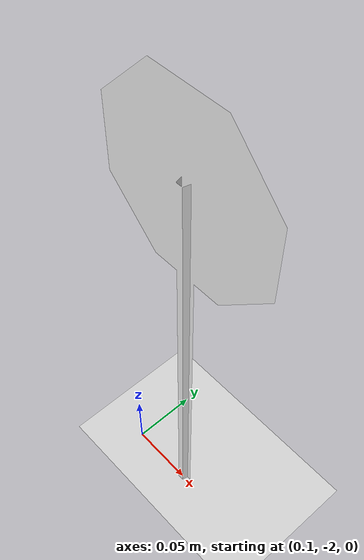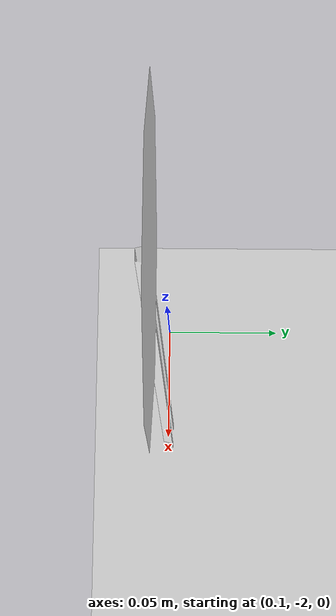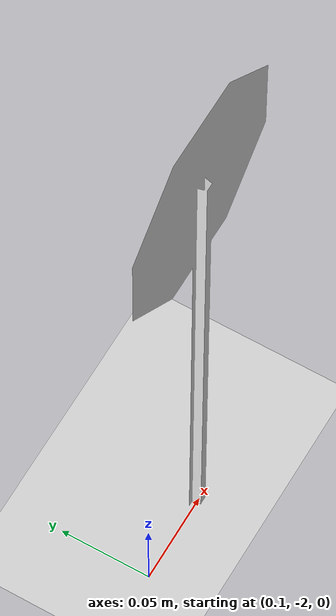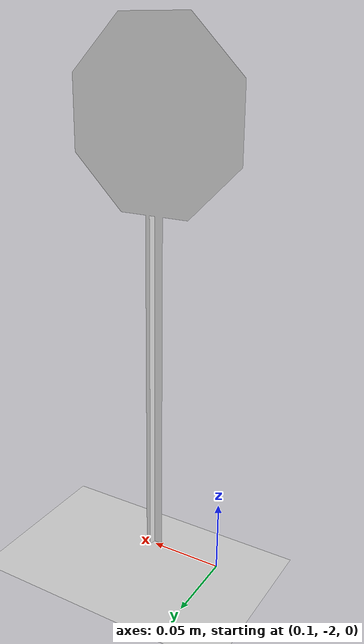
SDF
<sdf version="1.4">
  <world name="default">
    <!-- A global light source -->
    <include>
      <uri>model://sun</uri>
    </include>

    <!-- A ground plane -->
    <include>
      <uri>model://ground_plane</uri>
    </include>

    <physics type="ode">
      <real_time_update_rate>1000.0</real_time_update_rate>
      <max_step_size>0.001</max_step_size>
      <real_time_factor>1</real_time_factor>
      <ode>
        <solver>
          <type>quick</type>
          <iters>150</iters>
          <precon_iters>0</precon_iters>
          <sor>1.400000</sor>
          <use_dynamic_moi_rescaling>1</use_dynamic_moi_rescaling>
        </solver>
        <constraints>
          <cfm>0.00001</cfm>
          <erp>0.2</erp>
          <contact_max_correcting_vel>2000.000000</contact_max_correcting_vel>
          <contact_surface_layer>0.01000</contact_surface_layer>
        </constraints>
      </ode>
    </physics>

    <model name='Stop Sign'>
      <link name='link'>
        <collision name='collision'>
          <geometry>
            <mesh>
              <uri>model://stop_sign/meshes/stop_sign.dae</uri>
              <scale>.2 .2 .2</scale>
            </mesh>
          </geometry>
          <max_contacts>10</max_contacts>
          <surface>
            <contact>
              <ode/>
            </contact>
            <bounce/>
            <friction>
              <torsional>
                <ode/>
              </torsional>
              <ode/>
            </friction>
          </surface>
        </collision>
        <visual name='visual'>
          <geometry>
            <mesh>
              <uri>model://stop_sign/meshes/stop_sign.dae</uri>
              <scale>.2 .2 .2</scale>
            </mesh>
          </geometry>
          <material>
            <script>
              <uri>model://stop_sign/materials/scripts</uri>
              <uri>model://stop_sign/materials/textures</uri>
              <name>StopSign/Diffuse</name>
            </script>
          </material>
        </visual>
        <self_collide>0</self_collide>
        <inertial>
          <inertia>
            <ixx>1</ixx>
            <ixy>0</ixy>
            <ixz>0</ixz>
            <iyy>1</iyy>
            <iyz>0</iyz>
            <izz>1</izz>
          </inertia>
          <mass>1</mass>
        </inertial>
        <kinematic>0</kinematic>
        <gravity>1</gravity>
      </link>
      <pose frame=''>.15 -2 0 0 0 3.14159</pose>
    </model>

  </world>
</sdf>
